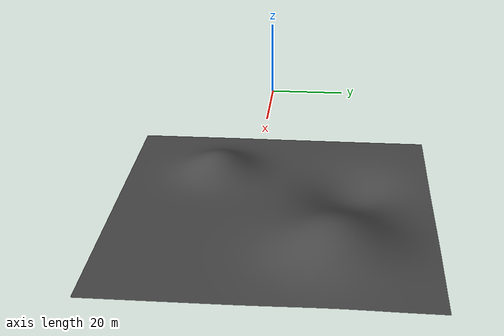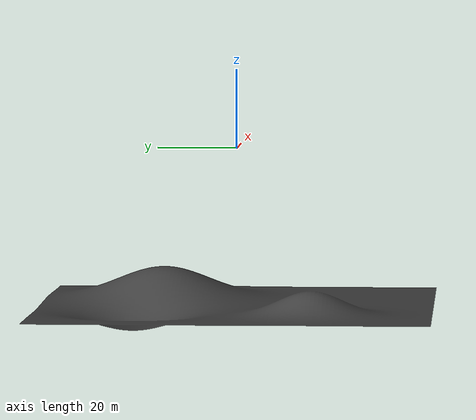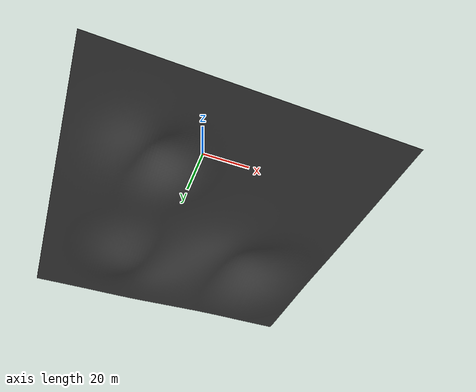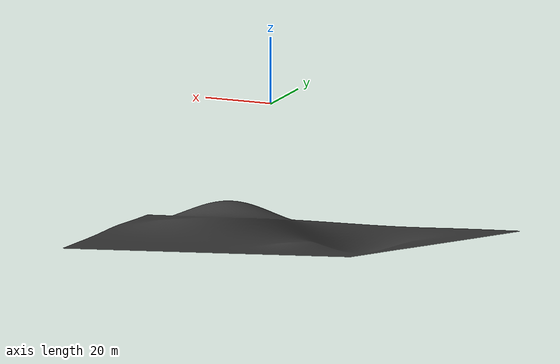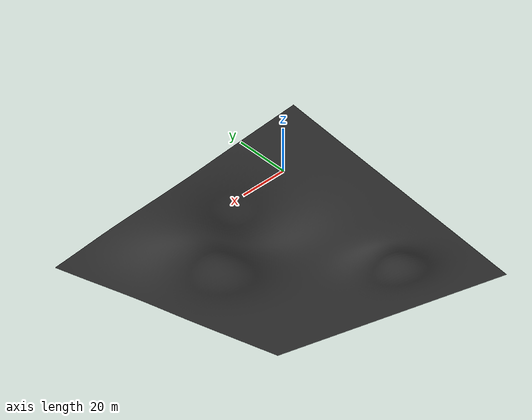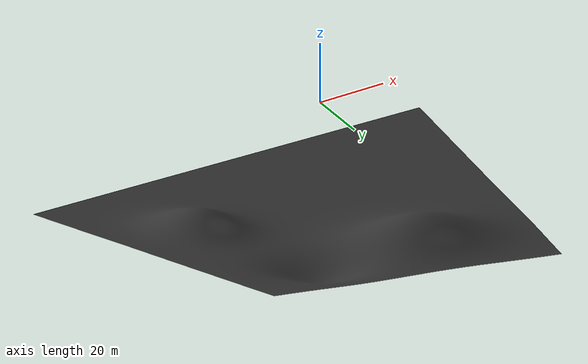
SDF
<?xml version="1.0"?>
<sdf version="1.4">
  <model name="custom_seafloor">
    <static>true</static>
    <link name="link">
      <collision name="collision">
        <geometry>
          <mesh>
            <uri>model://custom_seafloor/custom_seafloor.stl</uri>
            <scale>1 1 1</scale>
          </mesh>
        </geometry>
        <surface>
          <friction>
            <ode>
              <mu>100</mu>
              <mu2>50</mu2>
            </ode>
          </friction>
        </surface>
      </collision>
      <visual name="visual">
        <geometry>
          <mesh>
            <uri>model://custom_seafloor/custom_seafloor.stl</uri>
            <scale>1 1 1</scale>
          </mesh>
        </geometry>
        <material>
          <script>
            <uri>file://media/materials/scripts/gazebo.material</uri>
            <name>Gazebo/DarkGrey</name>
          </script>
        </material>
      </visual>
    </link>
  </model>
</sdf>
